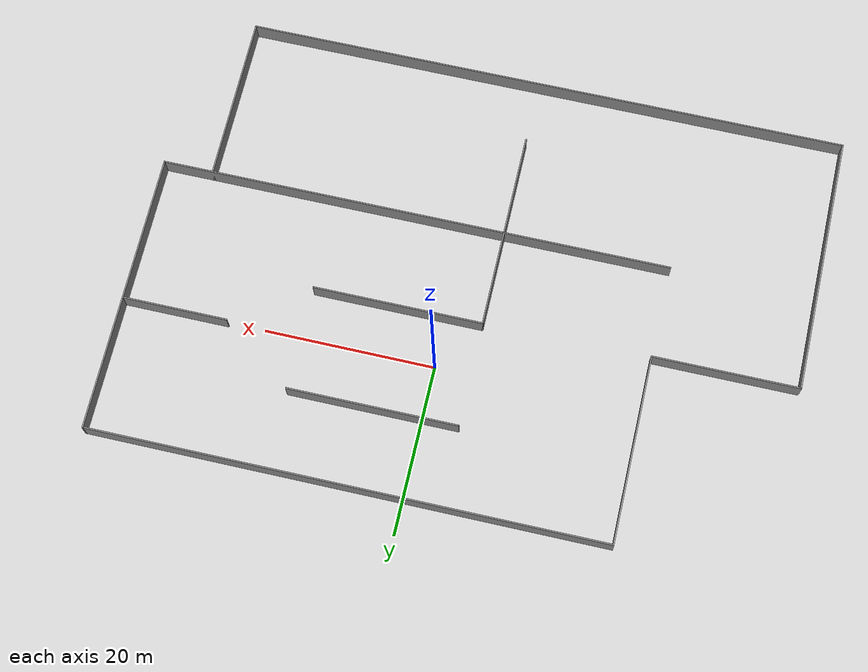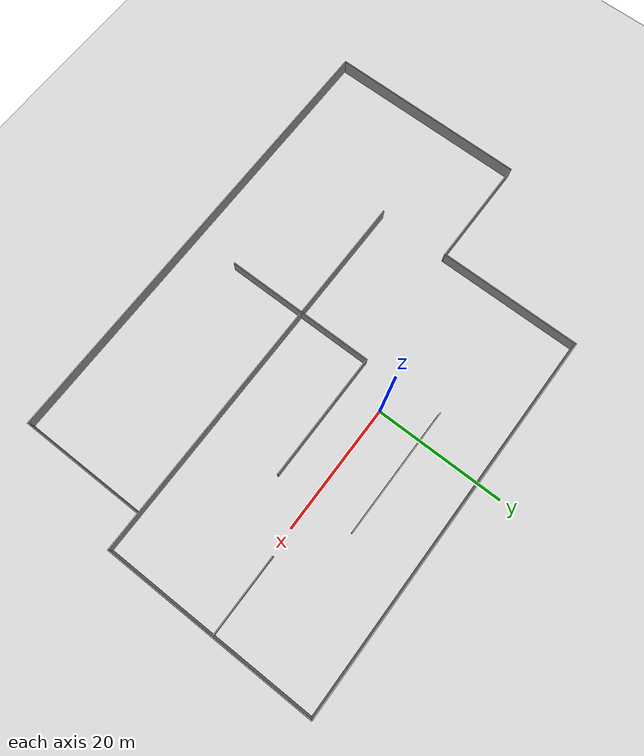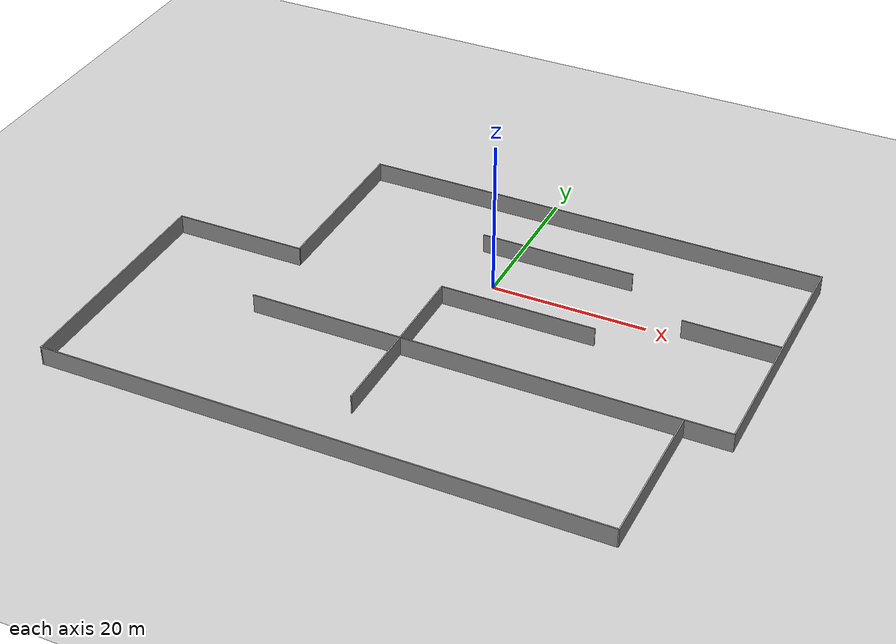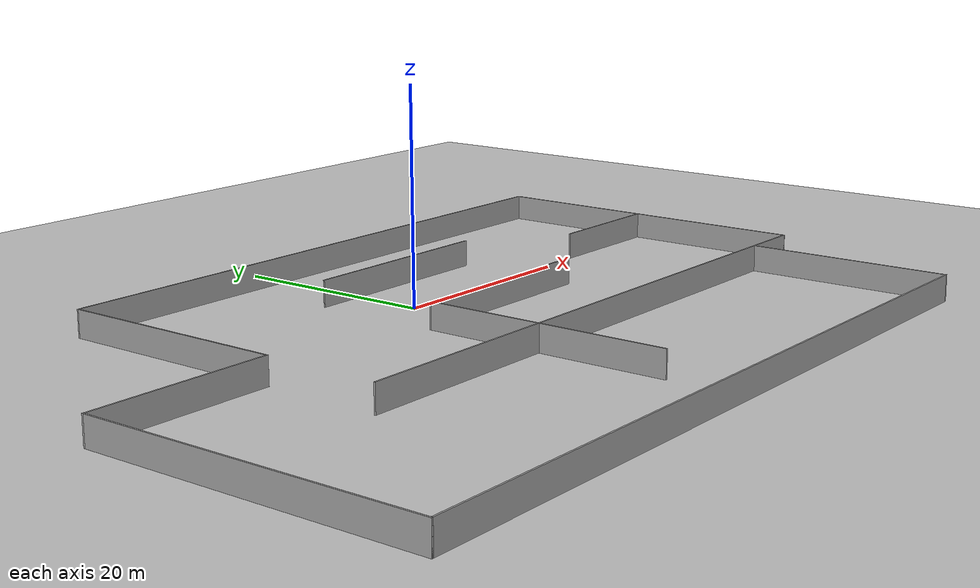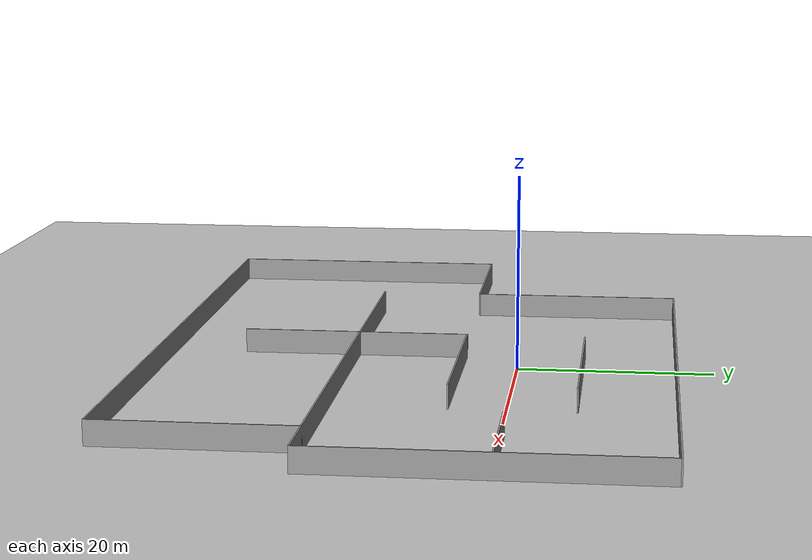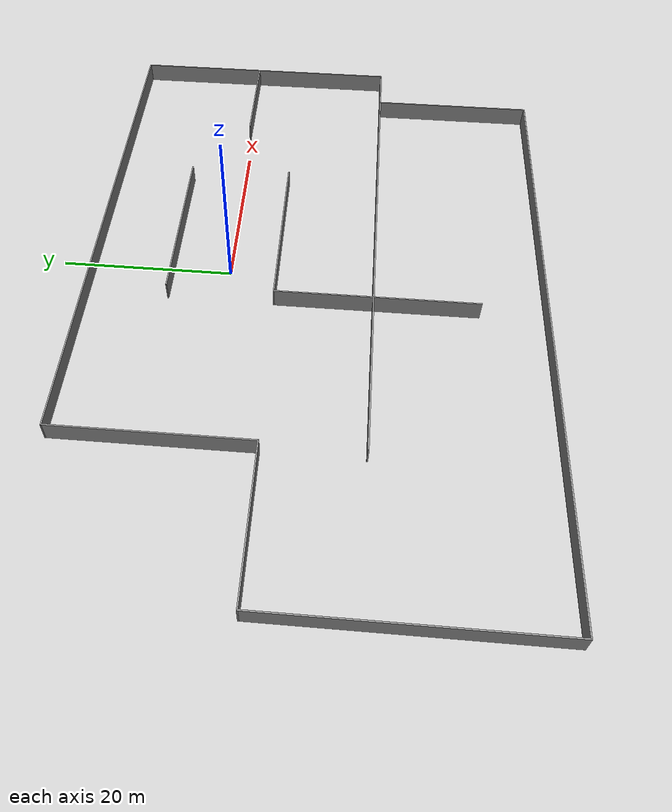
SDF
<sdf version="1.7">
 <world name="outdoor_world">
  <model name="ground_plane">
   <static>1</static>
   <link name="link">
    <collision name="collision">
     <geometry><plane><normal>0 0 1</normal><size>100 100</size></plane></geometry>
     <surface><friction><ode><mu>100</mu><mu2>50</mu2></ode></friction></surface>
    </collision>
    <visual name="visual">
     <cast_shadows>0</cast_shadows>
     <geometry><plane><normal>0 0 1</normal><size>100 100</size></plane></geometry>
     <material>
      <script><uri>file://media/materials/scripts/gazebo.material</uri><name>Gazebo/Grey</name></script>
     </material>
    </visual>
   </link>
  </model>
  <light name="sun" type="directional">
   <pose>0 0 10 0 -0 0</pose>
   <diffuse>0.8 0.8 0.8 1</diffuse>
   <specular>0.2 0.2 0.2 1</specular>
   <attenuation>
    <range>1000</range>
    <constant>0.9</constant>
    <linear>0.01</linear>
    <quadratic>0.001</quadratic>
   </attenuation>
   <direction>-0.5 0.1 -0.9</direction>
   <spot><inner_angle>0</inner_angle><outer_angle>0</outer_angle><falloff>0</falloff></spot>
  </light>
  <physics type="ode">
   <max_step_size>0.002</max_step_size>
   <real_time_factor>1</real_time_factor>
   <real_time_update_rate>500</real_time_update_rate>
  </physics>
  <scene><ambient>0.6 0.6 0.6 1</ambient><background>0.7 0.85 1 1</background><shadows>1</shadows></scene>
  <gravity>0 0 -9.8</gravity>
  <magnetic_field>6e-06 2.3e-05 -4.2e-05</magnetic_field>
  <atmosphere type="adiabatic"/>
  <audio><device>default</device></audio>
  <spherical_coordinates>
   <surface_model>EARTH_WGS84</surface_model>
   <latitude_deg>0</latitude_deg>
   <longitude_deg>0</longitude_deg>
   <elevation>0</elevation>
   <heading_deg>0</heading_deg>
  </spherical_coordinates>
  <model name="room">
   <pose>-2.175 -10.21 0 0 -0 0</pose>
   <link name="Wall_1">
    <collision name="Wall_1_Collision">
     <geometry><box><size>20 0.15 2.5</size></box></geometry>
     <pose>0 0 1.25 0 -0 0</pose>
    </collision>
    <visual name="Wall_1_Visual">
     <pose>0 0 1.25 0 -0 0</pose>
     <geometry><box><size>20 0.15 2.5</size></box></geometry>
     <material>
      <script><uri>file://media/materials/scripts/gazebo.material</uri><name>Gazebo/Grey</name></script>
      <ambient>1 1 1 1</ambient>
     </material>
     <meta><layer>0</layer></meta>
    </visual>
    <pose>7.8 4.6 0 0 -0 0</pose>
   </link>
   <link name="Wall_11">
    <collision name="Wall_11_Collision">
     <geometry><box><size>11.5 0.15 2.5</size></box></geometry>
     <pose>0 0 1.25 0 -0 0</pose>
    </collision>
    <visual name="Wall_11_Visual">
     <pose>0 0 1.25 0 -0 0</pose>
     <geometry><box><size>11.5 0.15 2.5</size></box></geometry>
     <material>
      <script><uri>file://media/materials/scripts/gazebo.material</uri><name>Gazebo/Grey</name></script>
      <ambient>1 1 1 1</ambient>
     </material>
     <meta><layer>0</layer></meta>
    </visual>
    <pose>-2.125 -1.075 0 0 -0 -1.5708</pose>
   </link>
   <link name="Wall_12">
    <collision name="Wall_12_Collision">
     <geometry><box><size>41 0.15 2.5</size></box></geometry>
     <pose>0 0 1.25 0 -0 0</pose>
    </collision>
    <visual name="Wall_12_Visual">
     <pose>0 0 1.25 0 -0 0</pose>
     <geometry><box><size>41 0.15 2.5</size></box></geometry>
     <material>
      <script><uri>file://media/materials/scripts/gazebo.material</uri><name>Gazebo/Grey</name></script>
      <ambient>1 1 1 1</ambient>
     </material>
     <meta><layer>0</layer></meta>
    </visual>
    <pose>18.3 -6.75 0 0 -0 0</pose>
   </link>
   <link name="Wall_13">
    <collision name="Wall_13_Collision">
     <geometry><box><size>33.25 0.15 2.5</size></box></geometry>
     <pose>0 0 1.25 0 -0 0</pose>
    </collision>
    <visual name="Wall_13_Visual">
     <pose>0 0 1.25 0 -0 0</pose>
     <geometry><box><size>33.25 0.15 2.5</size></box></geometry>
     <material>
      <script><uri>file://media/materials/scripts/gazebo.material</uri><name>Gazebo/Grey</name></script>
      <ambient>1 1 1 1</ambient>
     </material>
     <meta><layer>0</layer></meta>
    </visual>
    <pose>38.725 9.8 0 0 -0 1.5708</pose>
   </link>
   <link name="Wall_14">
    <collision name="Wall_14_Collision">
     <geometry><box><size>60.5 0.15 2.5</size></box></geometry>
     <pose>0 0 1.25 0 -0 0</pose>
    </collision>
    <visual name="Wall_14_Visual">
     <pose>0 0 1.25 0 -0 0</pose>
     <geometry><box><size>60.5 0.15 2.5</size></box></geometry>
     <material>
      <script><uri>file://media/materials/scripts/gazebo.material</uri><name>Gazebo/Grey</name></script>
      <ambient>1 1 1 1</ambient>
     </material>
     <meta><layer>0</layer></meta>
    </visual>
    <pose>8.55 26.35 0 0 -0 3.14159</pose>
   </link>
   <link name="Wall_17">
    <collision name="Wall_17_Collision">
     <geometry><box><size>19.75 0.15 2.5</size></box></geometry>
     <pose>0 0 1.25 0 -0 0</pose>
    </collision>
    <visual name="Wall_17_Visual">
     <pose>0 0 1.25 0 -0 0</pose>
     <geometry><box><size>19.75 0.15 2.5</size></box></geometry>
     <material>
      <script><uri>file://media/materials/scripts/gazebo.material</uri><name>Gazebo/Grey</name></script>
      <ambient>1 1 1 1</ambient>
     </material>
     <meta><layer>0</layer></meta>
    </visual>
    <pose>-11.925 -6.75 0 0 -0 3.14159</pose>
   </link>
   <link name="Wall_19">
    <collision name="Wall_19_Collision">
     <geometry><box><size>12.25 0.15 2.5</size></box></geometry>
     <pose>0 0 1.25 0 -0 0</pose>
    </collision>
    <visual name="Wall_19_Visual">
     <pose>0 0 1.25 0 -0 0</pose>
     <geometry><box><size>12.25 0.15 2.5</size></box></geometry>
     <material>
      <script><uri>file://media/materials/scripts/gazebo.material</uri><name>Gazebo/Grey</name></script>
      <ambient>1 1 1 1</ambient>
     </material>
     <meta><layer>0</layer></meta>
    </visual>
    <pose>32.5224 10.5861 0 0 -0 3.14159</pose>
   </link>
   <link name="Wall_21">
    <collision name="Wall_21_Collision">
     <geometry><box><size>22.25 0.15 2.5</size></box></geometry>
     <pose>0 0 1.25 0 -0 0</pose>
    </collision>
    <visual name="Wall_21_Visual">
     <pose>0 0 1.25 0 -0 0</pose>
     <geometry><box><size>22.25 0.15 2.5</size></box></geometry>
     <material>
      <script><uri>file://media/materials/scripts/gazebo.material</uri><name>Gazebo/Grey</name></script>
      <ambient>1 1 1 1</ambient>
     </material>
     <meta><layer>0</layer></meta>
    </visual>
    <pose>-21.625 15.3 0 0 -0 -1.5708</pose>
   </link>
   <link name="Wall_22">
    <collision name="Wall_22_Collision">
     <geometry><box><size>17.25 0.15 2.5</size></box></geometry>
     <pose>0 0 1.25 0 -0 0</pose>
    </collision>
    <visual name="Wall_22_Visual">
     <pose>0 0 1.25 0 -0 0</pose>
     <geometry><box><size>17.25 0.15 2.5</size></box></geometry>
     <material>
      <script><uri>file://media/materials/scripts/gazebo.material</uri><name>Gazebo/Grey</name></script>
      <ambient>1 1 1 1</ambient>
     </material>
     <meta><layer>0</layer></meta>
    </visual>
    <pose>-30.175 4.25 0 0 -0 3.14159</pose>
   </link>
   <link name="Wall_27">
    <collision name="Wall_27_Collision">
     <geometry><box><size>12.25 0.15 2.5</size></box></geometry>
     <pose>0 0 1.25 0 -0 0</pose>
    </collision>
    <visual name="Wall_27_Visual">
     <pose>0 0 1.25 0 -0 0</pose>
     <geometry><box><size>12.25 0.15 2.5</size></box></geometry>
     <material>
      <script><uri>file://media/materials/scripts/gazebo.material</uri><name>Gazebo/Grey</name></script>
      <ambient>1 1 1 1</ambient>
     </material>
     <meta><layer>0</layer></meta>
    </visual>
    <pose>-2.125 -12.8 0 0 -0 -1.5708</pose>
   </link>
   <link name="Wall_29">
    <collision name="Wall_29_Collision">
     <geometry><box><size>30.75 0.15 2.5</size></box></geometry>
     <pose>0 0 1.25 0 -0 0</pose>
    </collision>
    <visual name="Wall_29_Visual">
     <pose>0 0 1.25 0 -0 0</pose>
     <geometry><box><size>30.75 0.15 2.5</size></box></geometry>
     <material>
      <script><uri>file://media/materials/scripts/gazebo.material</uri><name>Gazebo/Grey</name></script>
      <ambient>1 1 1 1</ambient>
     </material>
     <meta><layer>0</layer></meta>
    </visual>
    <pose>-38.725 -11.05 0 0 -0 -1.5708</pose>
   </link>
   <link name="Wall_30">
    <collision name="Wall_30_Collision">
     <geometry><box><size>71.75 0.15 2.5</size></box></geometry>
     <pose>0 0 1.25 0 -0 0</pose>
    </collision>
    <visual name="Wall_30_Visual">
     <pose>0 0 1.25 0 -0 0</pose>
     <geometry><box><size>71.75 0.15 2.5</size></box></geometry>
     <material>
      <script><uri>file://media/materials/scripts/gazebo.material</uri><name>Gazebo/Grey</name></script>
      <ambient>1 1 1 1</ambient>
     </material>
     <meta><layer>0</layer></meta>
    </visual>
    <pose>-2.925 -26.35 0 0 -0 0</pose>
   </link>
   <link name="Wall_38">
    <collision name="Wall_38_Collision">
     <geometry><box><size>19.75 0.15 2.5</size></box></geometry>
     <pose>0 0 1.25 0 -0 0</pose>
    </collision>
    <visual name="Wall_38_Visual">
     <pose>0 0 1.25 0 -0 0</pose>
     <geometry><box><size>19.75 0.15 2.5</size></box></geometry>
     <material>
      <script><uri>file://media/materials/scripts/gazebo.material</uri><name>Gazebo/Grey</name></script>
      <ambient>1 1 1 1</ambient>
     </material>
     <meta><layer>0</layer></meta>
    </visual>
    <pose>32.875 -16.55 0 0 -0 1.5708</pose>
   </link>
   <link name="Wall_9">
    <collision name="Wall_9_Collision">
     <geometry><box><size>20 0.15 2.5</size></box></geometry>
     <pose>0 0 1.25 0 -0 0</pose>
    </collision>
    <visual name="Wall_9_Visual">
     <pose>0 0 1.25 0 -0 0</pose>
     <geometry><box><size>20 0.15 2.5</size></box></geometry>
     <material>
      <script><uri>file://media/materials/scripts/gazebo.material</uri><name>Gazebo/Grey</name></script>
      <ambient>1 1 1 1</ambient>
     </material>
     <meta><layer>0</layer></meta>
    </visual>
    <pose>7.8 16.95 0 0 -0 0</pose>
   </link>
   <static>1</static>
  </model>
 </world>
</sdf>
